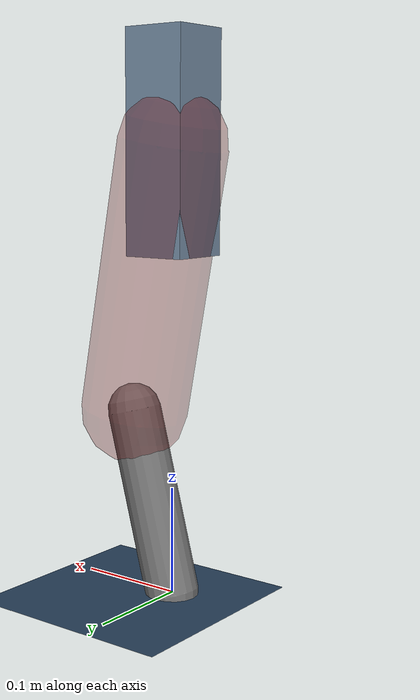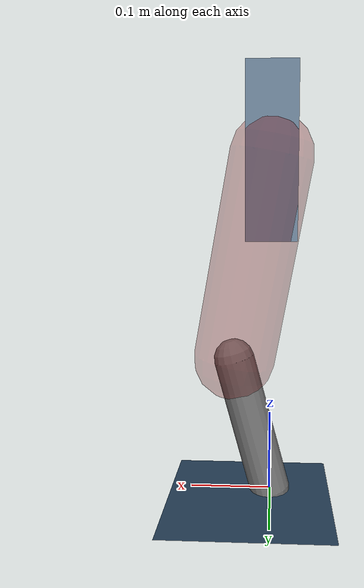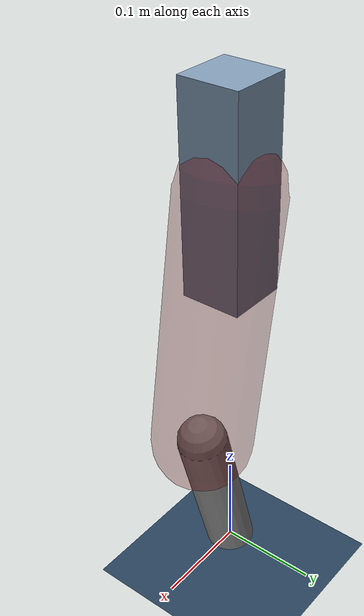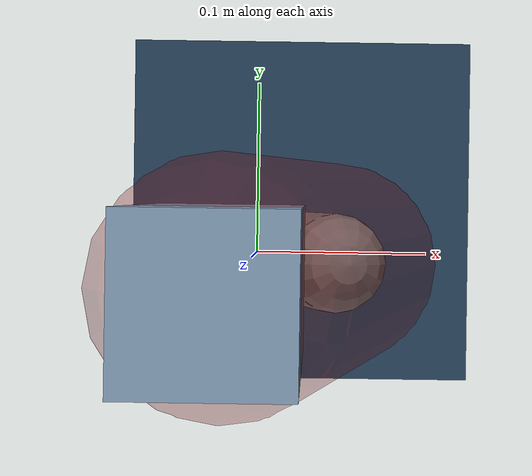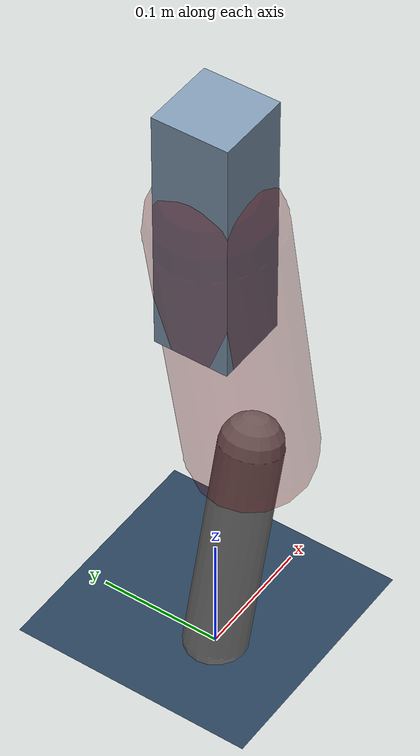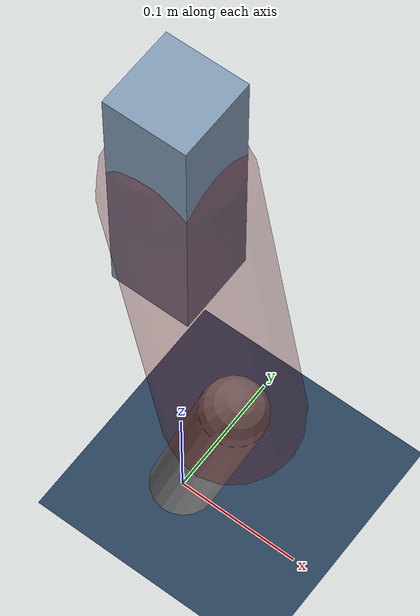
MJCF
<mujoco model="Hopper2D">
	<compiler inertiafromgeom="true" angle="radian" />
	<option timestep="0.001" integrator="implicit" cone="elliptic" solver="Newton" tolerance="1e-10" />

	<default>
		<geom contype="1" conaffinity="1" condim="3" friction="2 0.005 0.0001" solref="0.005 1" />
		<joint limited="true" damping="0.1" />
	</default>

	<asset>
		<texture name="skybox" type="skybox" builtin="gradient" rgb1=".4 .6 .8" rgb2="0 0 0" width="800" height="800" />
		<texture name="grid" type="2d" builtin="checker" rgb1=".1 .2 .3" rgb2=".2 .3 .4" width="300" height="300" mark="edge" markrgb=".2 .3 .4" />
		<material name="ground" texture="grid" texrepeat="1 1" texuniform="true" reflectance="0.1" />
		<material name="leg" rgba="0.5 0.6 0.7 1" />
	</asset>

	<worldbody>

		<geom name="floor" type="plane" size="5 5 0.25" material="ground" />

		<light directional="false" diffuse="0.8 0.8 0.8" specular="0.3 0.3 0.3" pos="0 0 2" dir="0 0 -1" />
		<light mode="targetbodycom" target="base" directional="false" diffuse="0.8 0.8 0.8" specular="0.3 0.3 0.3" pos="0 0 2" dir="0 0 -1" />

		<camera name="fixed" pos="0 -2 1" xyaxes="1 0 0 0 0 1" />
		<camera name="tracking" mode="trackcom" pos="0 -3 1" />

		<body name="root" pos="0 0 0.41528490011749986">
			<joint name="slide_x" type="slide" axis="1 0 0" range="-100 100" />
			<joint name="slide_z" type="slide" axis="0 0 1" range="0 10" />

			<body name="base" pos="0 0 0">
				<geom name="torso" type="box" size="0.03 0.03 0.1" mass="2.398" material="leg" />

				<body name="link1" pos="0 0 0" euler="0 1.389986065931788 0">
					<joint type="hinge" axis="0 -1 0" pos="0 0 0" name="hinge1" limited="true" range="-3.14 3.14" stiffness="0" damping="0.1" />
					<geom name="thigh" type="capsule" fromto="0 0 0 0.25061941482064337 0 0" size="0.05" rgba="0.5 0 0 0.3" mass="0.8580104785336727" />

					<body name="link2" pos="0.25061941482064337 0 0" euler="0 0.4417876630900406 0">
						<joint type="hinge" axis="0 -1 0" pos="0 0 0" name="hinge2" limited="true" range="-3.14 3.14" stiffness="0" damping="0.1" />
						<geom name="shank" type="capsule" fromto="0 0 0 0.17466548529685652 0 0" size="0.025" mass="0.37929893676717086" />

					</body>
				</body>
			</body>
		</body>
	</worldbody>

	<actuator>
		<motor name="torque1" joint="hinge1" ctrlrange="-49.65489248563716 49.65489248563716" ctrllimited="true" gear="1" />
		<motor name="torque2" joint="hinge2" ctrlrange="-72.21984284354922 72.21984284354922" ctrllimited="true" gear="1" />
	</actuator>
</mujoco>
